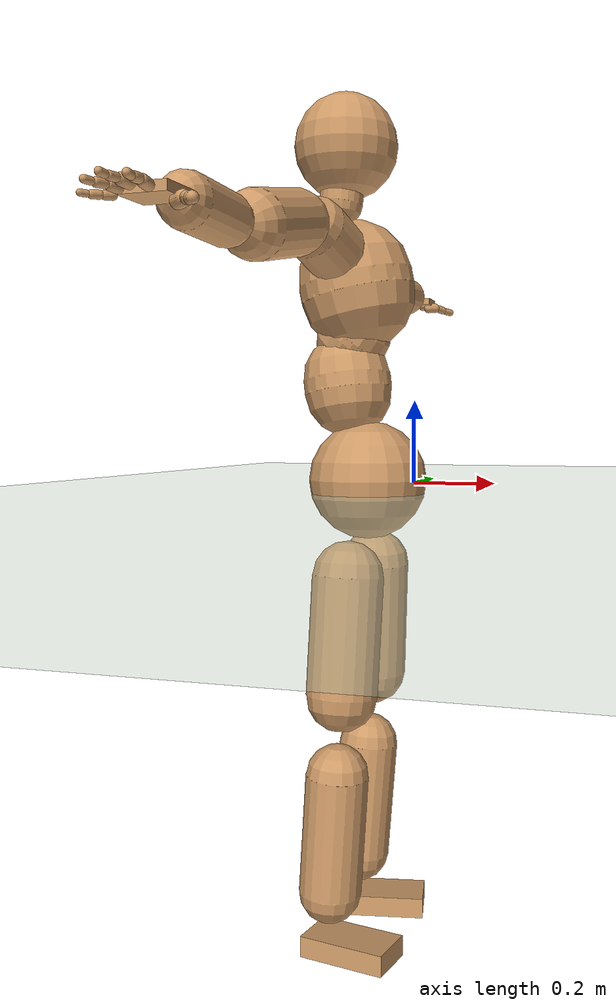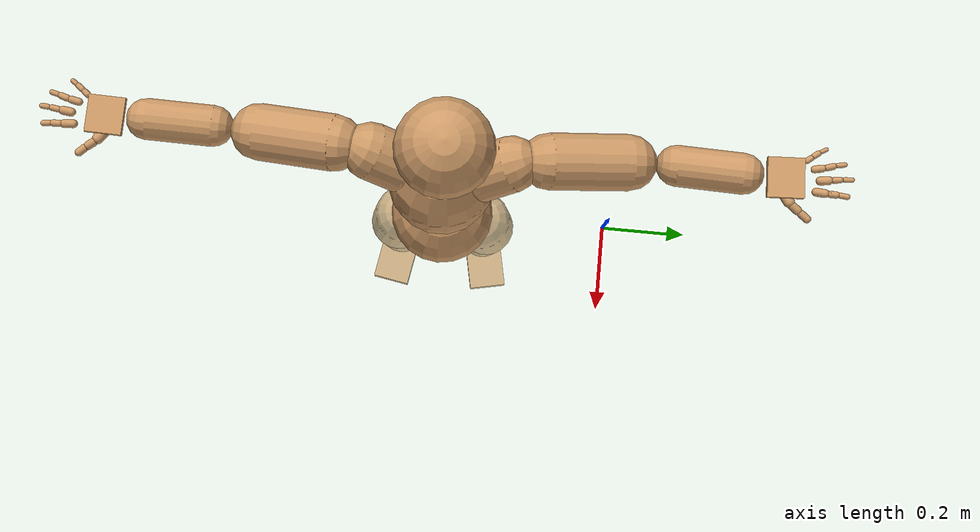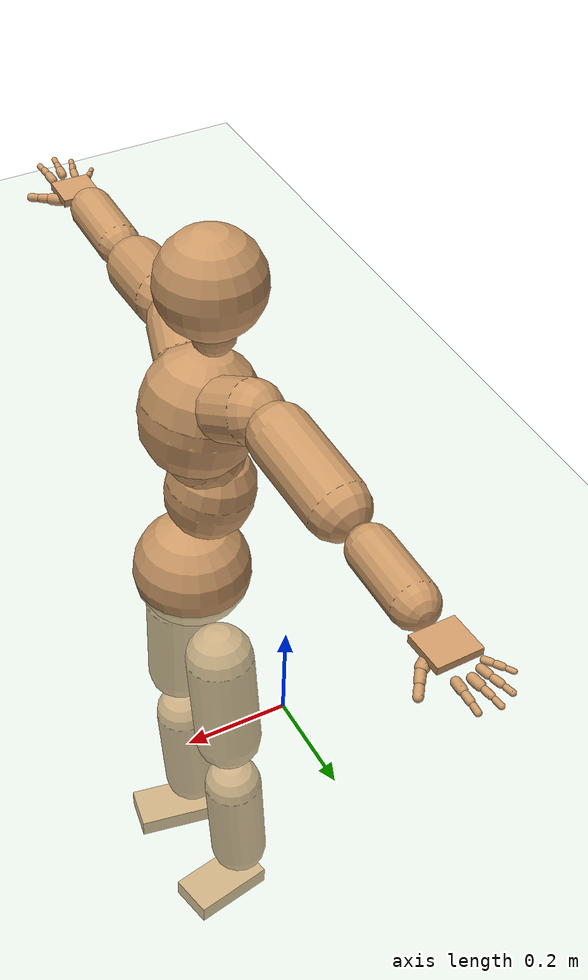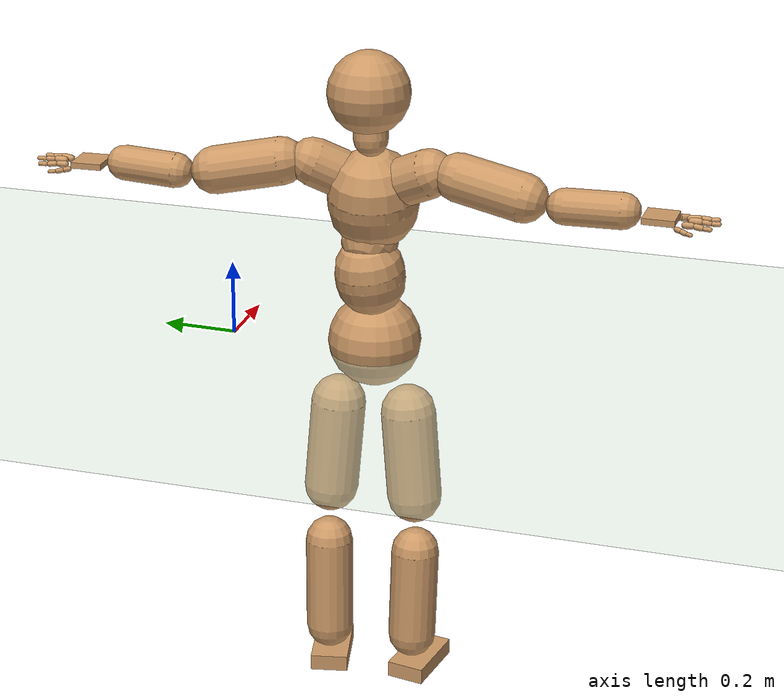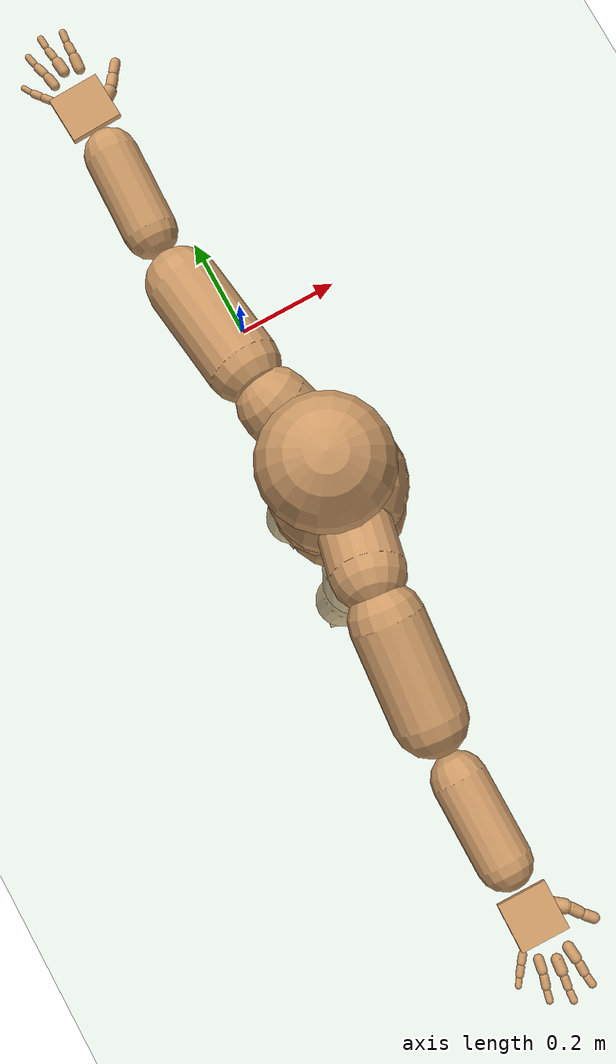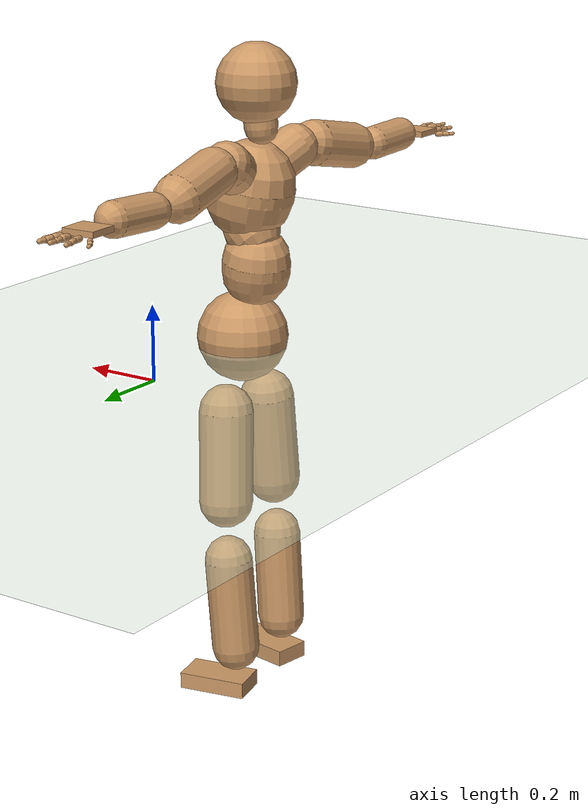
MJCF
<mujoco model="humanoid">
  <compiler coordinate="local" angle="radian"/>
  <default>
    <joint damping="0.0" armature="0.01" stiffness="0.0" limited="true"/>
    <geom conaffinity="1" condim="3" contype="7" margin="0.001" rgba="0.8 0.6 .4 1"/>
  </default>
  <asset>
    <texture type="skybox" builtin="gradient" rgb1=".4 .5 .6" rgb2="0 0 0" width="100" height="100"/>
    <texture builtin="flat" height="1278" mark="cross" markrgb="1 1 1" name="texgeom" random="0.01" rgb1="0.8 0.6 0.4" rgb2="0.8 0.6 0.4" type="cube" width="127"/>
    <texture builtin="checker" height="100" name="texplane" rgb1="0 0 0" rgb2="0.8 0.8 0.8" type="2d" width="100"/>
    <material name="MatPlane" reflectance="0.5" shininess="1" specular="1" texrepeat="60 60" texture="texplane"/>
    <material name="geom" texture="texgeom" texuniform="true"/>
  </asset>
  <worldbody>
    <light cutoff="100" diffuse="1 1 1" dir="-0 0 -1.3" directional="true" exponent="1" pos="0 0 1.3" specular=".1 .1 .1"/>
    <geom conaffinity="1" condim="3" name="floor" pos="0 0 0" rgba="0.8 0.9 0.8 1" size="100 100 .2" type="plane" material="MatPlane"/>
    <body name="Pelvis" pos="0.0012 -0.3966 0.0263">
      <freejoint name="Pelvis"/>
      <geom type="sphere" contype="1" conaffinity="1" density="500" size="0.1240" pos="0.0000 0.0000 0.0000" name="Pelvis"/>
      <body name="L_Hip" pos="-0.0093 0.0914 -0.1052">
        <joint name="L_Hip_x" type="hinge" pos="0 0 0" axis="1 0 0" stiffness="800" damping="80" armature="0.02" range="-180.0000 180.0000"/>
        <joint name="L_Hip_y" type="hinge" pos="0 0 0" axis="0 1 0" stiffness="800" damping="80" armature="0.02" range="-180.0000 180.0000"/>
        <joint name="L_Hip_z" type="hinge" pos="0 0 0" axis="0 0 1" stiffness="800" damping="80" armature="0.02" range="-180.0000 180.0000"/>
        <geom type="capsule" contype="1" conaffinity="1" density="500" fromto="-0.0037 0.0061 -0.0825 -0.0147 0.0243 -0.3301" size="0.0737" name="L_Hip"/>
        <body name="L_Knee" pos="-0.0184 0.0304 -0.4127">
          <joint name="L_Knee_x" type="hinge" pos="0 0 0" axis="1 0 0" stiffness="800" damping="80" armature="0.02" range="-180.0000 180.0000"/>
          <joint name="L_Knee_y" type="hinge" pos="0 0 0" axis="0 1 0" stiffness="800" damping="80" armature="0.02" range="-180.0000 180.0000"/>
          <joint name="L_Knee_z" type="hinge" pos="0 0 0" axis="0 0 1" stiffness="800" damping="80" armature="0.02" range="-180.0000 180.0000"/>
          <geom type="capsule" contype="1" conaffinity="1" density="500" fromto="-0.0061 -0.0019 -0.0856 -0.0246 -0.0078 -0.3424" size="0.065" name="L_Knee"/>
          <body name="L_Ankle" pos="-0.0307 -0.0097 -0.428">
            <joint name="L_Ankle_x" type="hinge" pos="0 0 0" axis="1 0 0" stiffness="800" damping="80" armature="0.02" range="-180.0000 180.0000"/>
            <joint name="L_Ankle_y" type="hinge" pos="0 0 0" axis="0 1 0" stiffness="800" damping="80" armature="0.02" range="-180.0000 180.0000"/>
            <joint name="L_Ankle_z" type="hinge" pos="0 0 0" axis="0 0 1" stiffness="800" damping="80" armature="0.02" range="-180.0000 180.0000"/>
            <geom type="box" contype="1" conaffinity="1" density="500" pos="0.0580 0.0119 -0.0235" size="0.0935 0.0512 0.0221" quat="0.9949 0.0000 0.0000 0.1009" name="L_Ankle"/>
            <body name="L_Toe" pos="0.116 0.0238 -0.047">
              <joint name="L_Toe_x" type="hinge" pos="0 0 0" axis="1 0 0" stiffness="500" damping="50" armature="0.02" range="-180.0000 180.0000"/>
              <joint name="L_Toe_y" type="hinge" pos="0 0 0" axis="0 1 0" stiffness="500" damping="50" armature="0.02" range="-180.0000 180.0000"/>
              <joint name="L_Toe_z" type="hinge" pos="0 0 0" axis="0 0 1" stiffness="500" damping="50" armature="0.02" range="-180.0000 180.0000"/>
              <geom type="box" contype="1" conaffinity="1" density="500" pos="0.0000 0.0000 0.0232" size="0.001 0.0025 0.0011" quat="0.9942 0.0000 0.0000 0.1073" name="L_Toe"/>
            </body>
          </body>
        </body>
      </body>
      <body name="R_Hip" pos="-0.0102 -0.0913 -0.1114">
        <joint name="R_Hip_x" type="hinge" pos="0 0 0" axis="1 0 0" stiffness="800" damping="80" armature="0.02" range="-180.0000 180.0000"/>
        <joint name="R_Hip_y" type="hinge" pos="0 0 0" axis="0 1 0" stiffness="800" damping="80" armature="0.02" range="-180.0000 180.0000"/>
        <joint name="R_Hip_z" type="hinge" pos="0 0 0" axis="0 0 1" stiffness="800" damping="80" armature="0.02" range="-180.0000 180.0000"/>
        <geom type="capsule" contype="1" conaffinity="1" density="500" fromto="-0.0023 -0.0070 -0.0818 -0.0091 -0.0282 -0.3272" size="0.0736" name="R_Hip"/>
        <body name="R_Knee" pos="-0.0113 -0.0352 -0.409">
          <joint name="R_Knee_x" type="hinge" pos="0 0 0" axis="1 0 0" stiffness="800" damping="80" armature="0.02" range="-180.0000 180.0000"/>
          <joint name="R_Knee_y" type="hinge" pos="0 0 0" axis="0 1 0" stiffness="800" damping="80" armature="0.02" range="-180.0000 180.0000"/>
          <joint name="R_Knee_z" type="hinge" pos="0 0 0" axis="0 0 1" stiffness="800" damping="80" armature="0.02" range="-180.0000 180.0000"/>
          <geom type="capsule" contype="1" conaffinity="1" density="500" fromto="-0.0056 0.0009 -0.0838 -0.0223 0.0035 -0.3350" size="0.065" name="R_Knee"/>
          <body name="R_Ankle" pos="-0.0279 0.0043 -0.4188">
            <joint name="R_Ankle_x" type="hinge" pos="0 0 0" axis="1 0 0" stiffness="800" damping="80" armature="0.02" range="-180.0000 180.0000"/>
            <joint name="R_Ankle_y" type="hinge" pos="0 0 0" axis="0 1 0" stiffness="800" damping="80" armature="0.02" range="-180.0000 180.0000"/>
            <joint name="R_Ankle_z" type="hinge" pos="0 0 0" axis="0 0 1" stiffness="800" damping="80" armature="0.02" range="-180.0000 180.0000"/>
            <geom type="box" contype="1" conaffinity="1" density="500" pos="0.0549 -0.0095 -0.0251" size="0.0935 0.0512 0.0221" quat="0.9963 0.0000 0.0000 -0.0858" name="R_Ankle"/>
            <body name="R_Toe" pos="0.1097 -0.0191 -0.0501">
              <joint name="R_Toe_x" type="hinge" pos="0 0 0" axis="1 0 0" stiffness="500" damping="50" armature="0.02" range="-180.0000 180.0000"/>
              <joint name="R_Toe_y" type="hinge" pos="0 0 0" axis="0 1 0" stiffness="500" damping="50" armature="0.02" range="-180.0000 180.0000"/>
              <joint name="R_Toe_z" type="hinge" pos="0 0 0" axis="0 0 1" stiffness="500" damping="50" armature="0.02" range="-180.0000 180.0000"/>
              <geom type="box" contype="1" conaffinity="1" density="500" pos="0.0000 0.0000 0.0248" size="0.001 0.0025 0.0011" quat="0.9971 0.0000 0.0000 -0.0756" name="R_Toe"/>
            </body>
          </body>
        </body>
      </body>
      <body name="Torso" pos="-0.0338 -0.0072 0.1265">
        <joint name="Torso_x" type="hinge" pos="0 0 0" axis="1 0 0" stiffness="1000" damping="100" armature="0.02" range="-180.0000 180.0000"/>
        <joint name="Torso_y" type="hinge" pos="0 0 0" axis="0 1 0" stiffness="1000" damping="100" armature="0.02" range="-180.0000 180.0000"/>
        <joint name="Torso_z" type="hinge" pos="0 0 0" axis="0 0 1" stiffness="1000" damping="100" armature="0.02" range="-180.0000 180.0000"/>
        <geom type="capsule" contype="1" conaffinity="1" density="500" fromto="-0.0125 0.0079 0.0871 -0.0083 0.0053 0.0580" size="0.0924" name="Torso"/>
        <body name="Spine" pos="-0.0208 0.0131 0.1451">
          <joint name="Spine_x" type="hinge" pos="0 0 0" axis="1 0 0" stiffness="1000" damping="100" armature="0.02" range="-180.0000 180.0000"/>
          <joint name="Spine_y" type="hinge" pos="0 0 0" axis="0 1 0" stiffness="1000" damping="100" armature="0.02" range="-180.0000 180.0000"/>
          <joint name="Spine_z" type="hinge" pos="0 0 0" axis="0 0 1" stiffness="1000" damping="100" armature="0.02" range="-180.0000 180.0000"/>
          <geom type="capsule" contype="1" conaffinity="1" density="500" fromto="0.0277 -0.0041 0.0311 0.0185 -0.0028 0.0208" size="0.0749" name="Spine"/>
          <body name="Chest" pos="0.0462 -0.0069 0.0519">
            <joint name="Chest_x" type="hinge" pos="0 0 0" axis="1 0 0" stiffness="1000" damping="100" armature="0.02" range="-180.0000 180.0000"/>
            <joint name="Chest_y" type="hinge" pos="0 0 0" axis="0 1 0" stiffness="1000" damping="100" armature="0.02" range="-180.0000 180.0000"/>
            <joint name="Chest_z" type="hinge" pos="0 0 0" axis="0 0 1" stiffness="1000" damping="100" armature="0.02" range="-180.0000 180.0000"/>
            <geom type="capsule" contype="1" conaffinity="1" density="500" fromto="-0.0190 -0.0021 0.0951 -0.0127 -0.0014 0.0634" size="0.1193" name="Chest"/>
            <body name="Neck" pos="-0.0512 -0.0072 0.2184">
              <joint name="Neck_x" type="hinge" pos="0 0 0" axis="1 0 0" stiffness="500" damping="50" armature="0.02" range="-180.0000 180.0000"/>
              <joint name="Neck_y" type="hinge" pos="0 0 0" axis="0 1 0" stiffness="500" damping="50" armature="0.02" range="-180.0000 180.0000"/>
              <joint name="Neck_z" type="hinge" pos="0 0 0" axis="0 0 1" stiffness="500" damping="50" armature="0.02" range="-180.0000 180.0000"/>
              <geom type="capsule" contype="1" conaffinity="1" density="500" fromto="0.0023 0.0020 0.0292 0.0093 0.0081 0.1168" size="0.0452" name="Neck"/>
              <body name="Head" pos="0.0116 0.0101 0.146">
                <joint name="Head_x" type="hinge" pos="0 0 0" axis="1 0 0" stiffness="500" damping="50" armature="0.02" range="-180.0000 180.0000"/>
                <joint name="Head_y" type="hinge" pos="0 0 0" axis="0 1 0" stiffness="500" damping="50" armature="0.02" range="-180.0000 180.0000"/>
                <joint name="Head_z" type="hinge" pos="0 0 0" axis="0 0 1" stiffness="500" damping="50" armature="0.02" range="-180.0000 180.0000"/>
                <geom type="sphere" contype="1" conaffinity="1" density="500" size="0.1075" pos="0.0000 0.0000 0.0000" name="Head"/>
              </body>
            </body>
            <body name="L_Thorax" pos="-0.0181 0.0631 0.1308">
              <joint name="L_Thorax_x" type="hinge" pos="0 0 0" axis="1 0 0" stiffness="500" damping="50" armature="0.02" range="-180.0000 180.0000"/>
              <joint name="L_Thorax_y" type="hinge" pos="0 0 0" axis="0 1 0" stiffness="500" damping="50" armature="0.02" range="-180.0000 180.0000"/>
              <joint name="L_Thorax_z" type="hinge" pos="0 0 0" axis="0 0 1" stiffness="500" damping="50" armature="0.02" range="-180.0000 180.0000"/>
              <geom type="capsule" contype="1" conaffinity="1" density="500" fromto="-0.0076 0.0215 0.0106 -0.0305 0.0859 0.0425" size="0.0628" name="L_Thorax"/>
              <body name="L_Shoulder" pos="-0.0381 0.1073 0.0531">
                <joint name="L_Shoulder_x" type="hinge" pos="0 0 0" axis="1 0 0" stiffness="500" damping="50" armature="0.02" range="-180.0000 180.0000"/>
                <joint name="L_Shoulder_y" type="hinge" pos="0 0 0" axis="0 1 0" stiffness="500" damping="50" armature="0.02" range="-180.0000 180.0000"/>
                <joint name="L_Shoulder_z" type="hinge" pos="0 0 0" axis="0 0 1" stiffness="500" damping="50" armature="0.02" range="-180.0000 180.0000"/>
                <geom type="capsule" contype="1" conaffinity="1" density="500" fromto="-0.0063 0.0586 -0.0119 -0.0252 0.2342 -0.0474" size="0.0628" name="L_Shoulder"/>
                <body name="L_Elbow" pos="-0.0315 0.2928 -0.0593">
                  <joint name="L_Elbow_x" type="hinge" pos="0 0 0" axis="1 0 0" stiffness="500" damping="50" armature="0.02" range="-720.0000 720.0000"/>
                  <joint name="L_Elbow_y" type="hinge" pos="0 0 0" axis="0 1 0" stiffness="500" damping="50" armature="0.02" range="-720.0000 720.0000"/>
                  <joint name="L_Elbow_z" type="hinge" pos="0 0 0" axis="0 0 1" stiffness="500" damping="50" armature="0.02" range="-720.0000 720.0000"/>
                  <geom type="capsule" contype="1" conaffinity="1" density="500" fromto="0.0017 0.0484 0.0020 0.0066 0.1938 0.0080" size="0.0462" name="L_Elbow"/>
                  <body name="L_Wrist" pos="0.0083 0.2422 0.01">
                    <joint name="L_Wrist_x" type="hinge" pos="0 0 0" axis="1 0 0" stiffness="300" damping="30" armature="0.02" range="-180.0000 180.0000"/>
                    <joint name="L_Wrist_y" type="hinge" pos="0 0 0" axis="0 1 0" stiffness="300" damping="30" armature="0.02" range="-180.0000 180.0000"/>
                    <joint name="L_Wrist_z" type="hinge" pos="0 0 0" axis="0 0 1" stiffness="300" damping="30" armature="0.02" range="-180.0000 180.0000"/>
                    <geom type="box" contype="1" conaffinity="1" density="500" pos="-0.0022 0.0466 -0.0084" size="0.041 0.0448 0.008" quat="0.7233 0.0000 0.0000 -0.6905" name="L_Wrist"/>
                    <body name="L_Index1" pos="0.0218 0.1097 -0.0146">
                      <joint name="L_Index1_x" type="hinge" pos="0 0 0" axis="1 0 0" stiffness="100" damping="10" armature="0.02" range="-180.0000 180.0000"/>
                      <joint name="L_Index1_y" type="hinge" pos="0 0 0" axis="0 1 0" stiffness="100" damping="10" armature="0.02" range="-180.0000 180.0000"/>
                      <joint name="L_Index1_z" type="hinge" pos="0 0 0" axis="0 0 1" stiffness="100" damping="10" armature="0.02" range="-180.0000 180.0000"/>
                      <geom type="capsule" contype="1" conaffinity="1" density="500" fromto="0.0006 0.0065 0.0006 0.0022 0.0261 0.0026" size="0.0095" name="L_Index1"/>
                      <body name="L_Index2" pos="0.0028 0.0326 0.0032">
                        <joint name="L_Index2_x" type="hinge" pos="0 0 0" axis="1 0 0" stiffness="100" damping="10" armature="0.02" range="-180.0000 180.0000"/>
                        <joint name="L_Index2_y" type="hinge" pos="0 0 0" axis="0 1 0" stiffness="100" damping="10" armature="0.02" range="-180.0000 180.0000"/>
                        <joint name="L_Index2_z" type="hinge" pos="0 0 0" axis="0 0 1" stiffness="100" damping="10" armature="0.02" range="-180.0000 180.0000"/>
                        <geom type="capsule" contype="1" conaffinity="1" density="500" fromto="0.0001 0.0046 -0.0003 0.0003 0.0183 -0.0011" size="0.0078" name="L_Index2"/>
                        <body name="L_Index3" pos="0.0004 0.0229 -0.0014">
                          <joint name="L_Index3_x" type="hinge" pos="0 0 0" axis="1 0 0" stiffness="100" damping="10" armature="0.02" range="-180.0000 180.0000"/>
                          <joint name="L_Index3_y" type="hinge" pos="0 0 0" axis="0 1 0" stiffness="100" damping="10" armature="0.02" range="-180.0000 180.0000"/>
                          <joint name="L_Index3_z" type="hinge" pos="0 0 0" axis="0 0 1" stiffness="100" damping="10" armature="0.02" range="-180.0000 180.0000"/>
                          <geom type="capsule" contype="1" conaffinity="1" density="500" fromto="0.0005 0.0050 0.0001 0.0019 0.0199 0.0005" size="0.0064" name="L_Index3"/>
                        </body>
                      </body>
                    </body>
                    <body name="L_Middle1" pos="-0.0021 0.1169 -0.0115">
                      <joint name="L_Middle1_x" type="hinge" pos="0 0 0" axis="1 0 0" stiffness="100" damping="10" armature="0.02" range="-180.0000 180.0000"/>
                      <joint name="L_Middle1_y" type="hinge" pos="0 0 0" axis="0 1 0" stiffness="100" damping="10" armature="0.02" range="-180.0000 180.0000"/>
                      <joint name="L_Middle1_z" type="hinge" pos="0 0 0" axis="0 0 1" stiffness="100" damping="10" armature="0.02" range="-180.0000 180.0000"/>
                      <geom type="capsule" contype="1" conaffinity="1" density="500" fromto="-0.0007 0.0062 0.0004 -0.0029 0.0247 0.0015" size="0.0097" name="L_Middle1"/>
                      <body name="L_Middle2" pos="-0.0036 0.0309 0.0018">
                        <joint name="L_Middle2_x" type="hinge" pos="0 0 0" axis="1 0 0" stiffness="100" damping="10" armature="0.02" range="-180.0000 180.0000"/>
                        <joint name="L_Middle2_y" type="hinge" pos="0 0 0" axis="0 1 0" stiffness="100" damping="10" armature="0.02" range="-180.0000 180.0000"/>
                        <joint name="L_Middle2_z" type="hinge" pos="0 0 0" axis="0 0 1" stiffness="100" damping="10" armature="0.02" range="-180.0000 180.0000"/>
                        <geom type="capsule" contype="1" conaffinity="1" density="500" fromto="-0.0007 0.0048 -0.0001 -0.0030 0.0190 -0.0005" size="0.007" name="L_Middle2"/>
                        <body name="L_Middle3" pos="-0.0037 0.0238 -0.0007">
                          <joint name="L_Middle3_x" type="hinge" pos="0 0 0" axis="1 0 0" stiffness="100" damping="10" armature="0.02" range="-180.0000 180.0000"/>
                          <joint name="L_Middle3_y" type="hinge" pos="0 0 0" axis="0 1 0" stiffness="100" damping="10" armature="0.02" range="-180.0000 180.0000"/>
                          <joint name="L_Middle3_z" type="hinge" pos="0 0 0" axis="0 0 1" stiffness="100" damping="10" armature="0.02" range="-180.0000 180.0000"/>
                          <geom type="capsule" contype="1" conaffinity="1" density="500" fromto="-0.0003 0.0052 0.0003 -0.0014 0.0206 0.0011" size="0.0059" name="L_Middle3"/>
                        </body>
                      </body>
                    </body>
                    <body name="L_Pinky1" pos="-0.0433 0.0898 -0.02">
                      <joint name="L_Pinky1_x" type="hinge" pos="0 0 0" axis="1 0 0" stiffness="100" damping="10" armature="0.02" range="-180.0000 180.0000"/>
                      <joint name="L_Pinky1_y" type="hinge" pos="0 0 0" axis="0 1 0" stiffness="100" damping="10" armature="0.02" range="-180.0000 180.0000"/>
                      <joint name="L_Pinky1_z" type="hinge" pos="0 0 0" axis="0 0 1" stiffness="100" damping="10" armature="0.02" range="-180.0000 180.0000"/>
                      <geom type="capsule" contype="1" conaffinity="1" density="500" fromto="-0.0025 0.0030 -0.0001 -0.0099 0.0121 -0.0005" size="0.0069" name="L_Pinky1"/>
                      <body name="L_Pinky2" pos="-0.0123 0.0151 -0.0006">
                        <joint name="L_Pinky2_x" type="hinge" pos="0 0 0" axis="1 0 0" stiffness="100" damping="10" armature="0.02" range="-180.0000 180.0000"/>
                        <joint name="L_Pinky2_y" type="hinge" pos="0 0 0" axis="0 1 0" stiffness="100" damping="10" armature="0.02" range="-180.0000 180.0000"/>
                        <joint name="L_Pinky2_z" type="hinge" pos="0 0 0" axis="0 0 1" stiffness="100" damping="10" armature="0.02" range="-180.0000 180.0000"/>
                        <geom type="capsule" contype="1" conaffinity="1" density="500" fromto="-0.0024 0.0031 -0.0002 -0.0094 0.0123 -0.0010" size="0.0067" name="L_Pinky2"/>
                        <body name="L_Pinky3" pos="-0.0118 0.0154 -0.0012">
                          <joint name="L_Pinky3_x" type="hinge" pos="0 0 0" axis="1 0 0" stiffness="100" damping="10" armature="0.02" range="-180.0000 180.0000"/>
                          <joint name="L_Pinky3_y" type="hinge" pos="0 0 0" axis="0 1 0" stiffness="100" damping="10" armature="0.02" range="-180.0000 180.0000"/>
                          <joint name="L_Pinky3_z" type="hinge" pos="0 0 0" axis="0 0 1" stiffness="100" damping="10" armature="0.02" range="-180.0000 180.0000"/>
                          <geom type="capsule" contype="1" conaffinity="1" density="500" fromto="-0.0020 0.0035 0.0002 -0.0078 0.0139 0.0006" size="0.005" name="L_Pinky3"/>
                        </body>
                      </body>
                    </body>
                    <body name="L_Ring1" pos="-0.0266 0.104 -0.0144">
                      <joint name="L_Ring1_x" type="hinge" pos="0 0 0" axis="1 0 0" stiffness="100" damping="10" armature="0.02" range="-180.0000 180.0000"/>
                      <joint name="L_Ring1_y" type="hinge" pos="0 0 0" axis="0 1 0" stiffness="100" damping="10" armature="0.02" range="-180.0000 180.0000"/>
                      <joint name="L_Ring1_z" type="hinge" pos="0 0 0" axis="0 0 1" stiffness="100" damping="10" armature="0.02" range="-180.0000 180.0000"/>
                      <geom type="capsule" contype="1" conaffinity="1" density="500" fromto="-0.0011 0.0057 0.0003 -0.0044 0.0227 0.0014" size="0.0084" name="L_Ring1"/>
                      <body name="L_Ring2" pos="-0.0055 0.0283 0.0017">
                        <joint name="L_Ring2_x" type="hinge" pos="0 0 0" axis="1 0 0" stiffness="100" damping="10" armature="0.02" range="-180.0000 180.0000"/>
                        <joint name="L_Ring2_y" type="hinge" pos="0 0 0" axis="0 1 0" stiffness="100" damping="10" armature="0.02" range="-180.0000 180.0000"/>
                        <joint name="L_Ring2_z" type="hinge" pos="0 0 0" axis="0 0 1" stiffness="100" damping="10" armature="0.02" range="-180.0000 180.0000"/>
                        <geom type="capsule" contype="1" conaffinity="1" density="500" fromto="-0.0015 0.0046 -0.0003 -0.0059 0.0184 -0.0010" size="0.0075" name="L_Ring2"/>
                        <body name="L_Ring3" pos="-0.0074 0.0229 -0.0013">
                          <joint name="L_Ring3_x" type="hinge" pos="0 0 0" axis="1 0 0" stiffness="100" damping="10" armature="0.02" range="-180.0000 180.0000"/>
                          <joint name="L_Ring3_y" type="hinge" pos="0 0 0" axis="0 1 0" stiffness="100" damping="10" armature="0.02" range="-180.0000 180.0000"/>
                          <joint name="L_Ring3_z" type="hinge" pos="0 0 0" axis="0 0 1" stiffness="100" damping="10" armature="0.02" range="-180.0000 180.0000"/>
                          <geom type="capsule" contype="1" conaffinity="1" density="500" fromto="-0.0011 0.0050 0.0001 -0.0043 0.0200 0.0006" size="0.0058" name="L_Ring3"/>
                        </body>
                      </body>
                    </body>
                    <body name="L_Thumb1" pos="0.0286 0.0459 -0.024">
                      <joint name="L_Thumb1_x" type="hinge" pos="0 0 0" axis="1 0 0" stiffness="100" damping="10" armature="0.02" range="-180.0000 180.0000"/>
                      <joint name="L_Thumb1_y" type="hinge" pos="0 0 0" axis="0 1 0" stiffness="100" damping="10" armature="0.02" range="-180.0000 180.0000"/>
                      <joint name="L_Thumb1_z" type="hinge" pos="0 0 0" axis="0 0 1" stiffness="100" damping="10" armature="0.02" range="-180.0000 180.0000"/>
                      <geom type="capsule" contype="1" conaffinity="1" density="500" fromto="0.0050 0.0036 0.0003 0.0199 0.0145 0.0011" size="0.0127" name="L_Thumb1"/>
                      <body name="L_Thumb2" pos="0.0248 0.0181 0.0013">
                        <joint name="L_Thumb2_x" type="hinge" pos="0 0 0" axis="1 0 0" stiffness="100" damping="10" armature="0.02" range="-180.0000 180.0000"/>
                        <joint name="L_Thumb2_y" type="hinge" pos="0 0 0" axis="0 1 0" stiffness="100" damping="10" armature="0.02" range="-180.0000 180.0000"/>
                        <joint name="L_Thumb2_z" type="hinge" pos="0 0 0" axis="0 0 1" stiffness="100" damping="10" armature="0.02" range="-180.0000 180.0000"/>
                        <geom type="capsule" contype="1" conaffinity="1" density="500" fromto="0.0030 0.0042 -0.0012 0.0119 0.0169 -0.0047" size="0.0099" name="L_Thumb2"/>
                        <body name="L_Thumb3" pos="0.0148 0.0212 -0.0059">
                          <joint name="L_Thumb3_x" type="hinge" pos="0 0 0" axis="1 0 0" stiffness="100" damping="10" armature="0.02" range="-180.0000 180.0000"/>
                          <joint name="L_Thumb3_y" type="hinge" pos="0 0 0" axis="0 1 0" stiffness="100" damping="10" armature="0.02" range="-180.0000 180.0000"/>
                          <joint name="L_Thumb3_z" type="hinge" pos="0 0 0" axis="0 0 1" stiffness="100" damping="10" armature="0.02" range="-180.0000 180.0000"/>
                          <geom type="capsule" contype="1" conaffinity="1" density="500" fromto="0.0034 0.0046 -0.0008 0.0135 0.0185 -0.0031" size="0.009" name="L_Thumb3"/>
                        </body>
                      </body>
                    </body>
                  </body>
                </body>
              </body>
            </body>
            <body name="R_Thorax" pos="-0.0258 -0.0663 0.1264">
              <joint name="R_Thorax_x" type="hinge" pos="0 0 0" axis="1 0 0" stiffness="500" damping="50" armature="0.02" range="-180.0000 180.0000"/>
              <joint name="R_Thorax_y" type="hinge" pos="0 0 0" axis="0 1 0" stiffness="500" damping="50" armature="0.02" range="-180.0000 180.0000"/>
              <joint name="R_Thorax_z" type="hinge" pos="0 0 0" axis="0 0 1" stiffness="500" damping="50" armature="0.02" range="-180.0000 180.0000"/>
              <geom type="capsule" contype="1" conaffinity="1" density="500" fromto="-0.0060 -0.0234 0.0111 -0.0239 -0.0936 0.0443" size="0.0639" name="R_Thorax"/>
              <body name="R_Shoulder" pos="-0.0298 -0.117 0.0554">
                <joint name="R_Shoulder_x" type="hinge" pos="0 0 0" axis="1 0 0" stiffness="500" damping="50" armature="0.02" range="-180.0000 180.0000"/>
                <joint name="R_Shoulder_y" type="hinge" pos="0 0 0" axis="0 1 0" stiffness="500" damping="50" armature="0.02" range="-180.0000 180.0000"/>
                <joint name="R_Shoulder_z" type="hinge" pos="0 0 0" axis="0 0 1" stiffness="500" damping="50" armature="0.02" range="-180.0000 180.0000"/>
                <geom type="capsule" contype="1" conaffinity="1" density="500" fromto="-0.0047 -0.0563 -0.0108 -0.0187 -0.2253 -0.0430" size="0.0633" name="R_Shoulder"/>
                <body name="R_Elbow" pos="-0.0234 -0.2816 -0.0538">
                  <joint name="R_Elbow_x" type="hinge" pos="0 0 0" axis="1 0 0" stiffness="500" damping="50" armature="0.02" range="-720.0000 720.0000"/>
                  <joint name="R_Elbow_y" type="hinge" pos="0 0 0" axis="0 1 0" stiffness="500" damping="50" armature="0.02" range="-720.0000 720.0000"/>
                  <joint name="R_Elbow_z" type="hinge" pos="0 0 0" axis="0 0 1" stiffness="500" damping="50" armature="0.02" range="-720.0000 720.0000"/>
                  <geom type="capsule" contype="1" conaffinity="1" density="500" fromto="-0.0005 -0.0485 0.0011 -0.0019 -0.1939 0.0046" size="0.0464" name="R_Elbow"/>
                  <body name="R_Wrist" pos="-0.0024 -0.2424 0.0057">
                    <joint name="R_Wrist_x" type="hinge" pos="0 0 0" axis="1 0 0" stiffness="300" damping="30" armature="0.02" range="-180.0000 180.0000"/>
                    <joint name="R_Wrist_y" type="hinge" pos="0 0 0" axis="0 1 0" stiffness="300" damping="30" armature="0.02" range="-180.0000 180.0000"/>
                    <joint name="R_Wrist_z" type="hinge" pos="0 0 0" axis="0 0 1" stiffness="300" damping="30" armature="0.02" range="-180.0000 180.0000"/>
                    <geom type="box" contype="1" conaffinity="1" density="500" pos="-0.0011 -0.0459 -0.0080" size="0.041 0.0419 0.0082" quat="0.7159 0.0000 0.0000 0.6982" name="R_Wrist"/>
                    <body name="R_Index1" pos="0.0238 -0.1084 -0.0137">
                      <joint name="R_Index1_x" type="hinge" pos="0 0 0" axis="1 0 0" stiffness="100" damping="10" armature="0.02" range="-180.0000 180.0000"/>
                      <joint name="R_Index1_y" type="hinge" pos="0 0 0" axis="0 1 0" stiffness="100" damping="10" armature="0.02" range="-180.0000 180.0000"/>
                      <joint name="R_Index1_z" type="hinge" pos="0 0 0" axis="0 0 1" stiffness="100" damping="10" armature="0.02" range="-180.0000 180.0000"/>
                      <geom type="capsule" contype="1" conaffinity="1" density="500" fromto="0.0006 -0.0065 0.0006 0.0022 -0.0261 0.0025" size="0.0095" name="R_Index1"/>
                      <body name="R_Index2" pos="0.0028 -0.0326 0.0032">
                        <joint name="R_Index2_x" type="hinge" pos="0 0 0" axis="1 0 0" stiffness="100" damping="10" armature="0.02" range="-180.0000 180.0000"/>
                        <joint name="R_Index2_y" type="hinge" pos="0 0 0" axis="0 1 0" stiffness="100" damping="10" armature="0.02" range="-180.0000 180.0000"/>
                        <joint name="R_Index2_z" type="hinge" pos="0 0 0" axis="0 0 1" stiffness="100" damping="10" armature="0.02" range="-180.0000 180.0000"/>
                        <geom type="capsule" contype="1" conaffinity="1" density="500" fromto="0.0001 -0.0046 -0.0003 0.0003 -0.0183 -0.0011" size="0.0078" name="R_Index2"/>
                        <body name="R_Index3" pos="0.0004 -0.0229 -0.0014">
                          <joint name="R_Index3_x" type="hinge" pos="0 0 0" axis="1 0 0" stiffness="100" damping="10" armature="0.02" range="-180.0000 180.0000"/>
                          <joint name="R_Index3_y" type="hinge" pos="0 0 0" axis="0 1 0" stiffness="100" damping="10" armature="0.02" range="-180.0000 180.0000"/>
                          <joint name="R_Index3_z" type="hinge" pos="0 0 0" axis="0 0 1" stiffness="100" damping="10" armature="0.02" range="-180.0000 180.0000"/>
                          <geom type="capsule" contype="1" conaffinity="1" density="500" fromto="0.0005 -0.0042 0.0001 0.0019 -0.0167 0.0005" size="0.0067" name="R_Index3"/>
                        </body>
                      </body>
                    </body>
                    <body name="R_Middle1" pos="-0.0001 -0.1155 -0.0106">
                      <joint name="R_Middle1_x" type="hinge" pos="0 0 0" axis="1 0 0" stiffness="100" damping="10" armature="0.02" range="-180.0000 180.0000"/>
                      <joint name="R_Middle1_y" type="hinge" pos="0 0 0" axis="0 1 0" stiffness="100" damping="10" armature="0.02" range="-180.0000 180.0000"/>
                      <joint name="R_Middle1_z" type="hinge" pos="0 0 0" axis="0 0 1" stiffness="100" damping="10" armature="0.02" range="-180.0000 180.0000"/>
                      <geom type="capsule" contype="1" conaffinity="1" density="500" fromto="-0.0007 -0.0062 0.0004 -0.0029 -0.0247 0.0015" size="0.0097" name="R_Middle1"/>
                      <body name="R_Middle2" pos="-0.0036 -0.0309 0.0018">
                        <joint name="R_Middle2_x" type="hinge" pos="0 0 0" axis="1 0 0" stiffness="100" damping="10" armature="0.02" range="-180.0000 180.0000"/>
                        <joint name="R_Middle2_y" type="hinge" pos="0 0 0" axis="0 1 0" stiffness="100" damping="10" armature="0.02" range="-180.0000 180.0000"/>
                        <joint name="R_Middle2_z" type="hinge" pos="0 0 0" axis="0 0 1" stiffness="100" damping="10" armature="0.02" range="-180.0000 180.0000"/>
                        <geom type="capsule" contype="1" conaffinity="1" density="500" fromto="-0.0007 -0.0048 -0.0001 -0.0030 -0.0190 -0.0005" size="0.007" name="R_Middle2"/>
                        <body name="R_Middle3" pos="-0.0037 -0.0238 -0.0007">
                          <joint name="R_Middle3_x" type="hinge" pos="0 0 0" axis="1 0 0" stiffness="100" damping="10" armature="0.02" range="-180.0000 180.0000"/>
                          <joint name="R_Middle3_y" type="hinge" pos="0 0 0" axis="0 1 0" stiffness="100" damping="10" armature="0.02" range="-180.0000 180.0000"/>
                          <joint name="R_Middle3_z" type="hinge" pos="0 0 0" axis="0 0 1" stiffness="100" damping="10" armature="0.02" range="-180.0000 180.0000"/>
                          <geom type="capsule" contype="1" conaffinity="1" density="500" fromto="-0.0003 -0.0044 0.0003 -0.0014 -0.0174 0.0011" size="0.0062" name="R_Middle3"/>
                        </body>
                      </body>
                    </body>
                    <body name="R_Pinky1" pos="-0.0413 -0.0884 -0.0191">
                      <joint name="R_Pinky1_x" type="hinge" pos="0 0 0" axis="1 0 0" stiffness="100" damping="10" armature="0.02" range="-180.0000 180.0000"/>
                      <joint name="R_Pinky1_y" type="hinge" pos="0 0 0" axis="0 1 0" stiffness="100" damping="10" armature="0.02" range="-180.0000 180.0000"/>
                      <joint name="R_Pinky1_z" type="hinge" pos="0 0 0" axis="0 0 1" stiffness="100" damping="10" armature="0.02" range="-180.0000 180.0000"/>
                      <geom type="capsule" contype="1" conaffinity="1" density="500" fromto="-0.0025 -0.0030 -0.0001 -0.0099 -0.0121 -0.0005" size="0.0069" name="R_Pinky1"/>
                      <body name="R_Pinky2" pos="-0.0123 -0.0151 -0.0006">
                        <joint name="R_Pinky2_x" type="hinge" pos="0 0 0" axis="1 0 0" stiffness="100" damping="10" armature="0.02" range="-180.0000 180.0000"/>
                        <joint name="R_Pinky2_y" type="hinge" pos="0 0 0" axis="0 1 0" stiffness="100" damping="10" armature="0.02" range="-180.0000 180.0000"/>
                        <joint name="R_Pinky2_z" type="hinge" pos="0 0 0" axis="0 0 1" stiffness="100" damping="10" armature="0.02" range="-180.0000 180.0000"/>
                        <geom type="capsule" contype="1" conaffinity="1" density="500" fromto="-0.0024 -0.0031 -0.0002 -0.0094 -0.0123 -0.0010" size="0.0067" name="R_Pinky2"/>
                        <body name="R_Pinky3" pos="-0.0118 -0.0154 -0.0012">
                          <joint name="R_Pinky3_x" type="hinge" pos="0 0 0" axis="1 0 0" stiffness="100" damping="10" armature="0.02" range="-180.0000 180.0000"/>
                          <joint name="R_Pinky3_y" type="hinge" pos="0 0 0" axis="0 1 0" stiffness="100" damping="10" armature="0.02" range="-180.0000 180.0000"/>
                          <joint name="R_Pinky3_z" type="hinge" pos="0 0 0" axis="0 0 1" stiffness="100" damping="10" armature="0.02" range="-180.0000 180.0000"/>
                          <geom type="capsule" contype="1" conaffinity="1" density="500" fromto="-0.0020 -0.0027 0.0002 -0.0078 -0.0107 0.0006" size="0.0053" name="R_Pinky3"/>
                        </body>
                      </body>
                    </body>
                    <body name="R_Ring1" pos="-0.0246 -0.1026 -0.0135">
                      <joint name="R_Ring1_x" type="hinge" pos="0 0 0" axis="1 0 0" stiffness="100" damping="10" armature="0.02" range="-180.0000 180.0000"/>
                      <joint name="R_Ring1_y" type="hinge" pos="0 0 0" axis="0 1 0" stiffness="100" damping="10" armature="0.02" range="-180.0000 180.0000"/>
                      <joint name="R_Ring1_z" type="hinge" pos="0 0 0" axis="0 0 1" stiffness="100" damping="10" armature="0.02" range="-180.0000 180.0000"/>
                      <geom type="capsule" contype="1" conaffinity="1" density="500" fromto="-0.0011 -0.0057 0.0003 -0.0044 -0.0227 0.0014" size="0.0084" name="R_Ring1"/>
                      <body name="R_Ring2" pos="-0.0055 -0.0283 0.0017">
                        <joint name="R_Ring2_x" type="hinge" pos="0 0 0" axis="1 0 0" stiffness="100" damping="10" armature="0.02" range="-180.0000 180.0000"/>
                        <joint name="R_Ring2_y" type="hinge" pos="0 0 0" axis="0 1 0" stiffness="100" damping="10" armature="0.02" range="-180.0000 180.0000"/>
                        <joint name="R_Ring2_z" type="hinge" pos="0 0 0" axis="0 0 1" stiffness="100" damping="10" armature="0.02" range="-180.0000 180.0000"/>
                        <geom type="capsule" contype="1" conaffinity="1" density="500" fromto="-0.0015 -0.0046 -0.0003 -0.0059 -0.0184 -0.0010" size="0.0075" name="R_Ring2"/>
                        <body name="R_Ring3" pos="-0.0074 -0.0229 -0.0013">
                          <joint name="R_Ring3_x" type="hinge" pos="0 0 0" axis="1 0 0" stiffness="100" damping="10" armature="0.02" range="-180.0000 180.0000"/>
                          <joint name="R_Ring3_y" type="hinge" pos="0 0 0" axis="0 1 0" stiffness="100" damping="10" armature="0.02" range="-180.0000 180.0000"/>
                          <joint name="R_Ring3_z" type="hinge" pos="0 0 0" axis="0 0 1" stiffness="100" damping="10" armature="0.02" range="-180.0000 180.0000"/>
                          <geom type="capsule" contype="1" conaffinity="1" density="500" fromto="-0.0011 -0.0042 0.0001 -0.0043 -0.0168 0.0006" size="0.006" name="R_Ring3"/>
                        </body>
                      </body>
                    </body>
                    <body name="R_Thumb1" pos="0.0307 -0.0445 -0.023">
                      <joint name="R_Thumb1_x" type="hinge" pos="0 0 0" axis="1 0 0" stiffness="100" damping="10" armature="0.02" range="-180.0000 180.0000"/>
                      <joint name="R_Thumb1_y" type="hinge" pos="0 0 0" axis="0 1 0" stiffness="100" damping="10" armature="0.02" range="-180.0000 180.0000"/>
                      <joint name="R_Thumb1_z" type="hinge" pos="0 0 0" axis="0 0 1" stiffness="100" damping="10" armature="0.02" range="-180.0000 180.0000"/>
                      <geom type="capsule" contype="1" conaffinity="1" density="500" fromto="0.0050 -0.0036 0.0003 0.0199 -0.0145 0.0011" size="0.0127" name="R_Thumb1"/>
                      <body name="R_Thumb2" pos="0.0248 -0.0181 0.0013">
                        <joint name="R_Thumb2_x" type="hinge" pos="0 0 0" axis="1 0 0" stiffness="100" damping="10" armature="0.02" range="-180.0000 180.0000"/>
                        <joint name="R_Thumb2_y" type="hinge" pos="0 0 0" axis="0 1 0" stiffness="100" damping="10" armature="0.02" range="-180.0000 180.0000"/>
                        <joint name="R_Thumb2_z" type="hinge" pos="0 0 0" axis="0 0 1" stiffness="100" damping="10" armature="0.02" range="-180.0000 180.0000"/>
                        <geom type="capsule" contype="1" conaffinity="1" density="500" fromto="0.0030 -0.0042 -0.0012 0.0119 -0.0169 -0.0047" size="0.0099" name="R_Thumb2"/>
                        <body name="R_Thumb3" pos="0.0148 -0.0212 -0.0059">
                          <joint name="R_Thumb3_x" type="hinge" pos="0 0 0" axis="1 0 0" stiffness="100" damping="10" armature="0.02" range="-180.0000 180.0000"/>
                          <joint name="R_Thumb3_y" type="hinge" pos="0 0 0" axis="0 1 0" stiffness="100" damping="10" armature="0.02" range="-180.0000 180.0000"/>
                          <joint name="R_Thumb3_z" type="hinge" pos="0 0 0" axis="0 0 1" stiffness="100" damping="10" armature="0.02" range="-180.0000 180.0000"/>
                          <geom type="capsule" contype="1" conaffinity="1" density="500" fromto="0.0034 -0.0038 -0.0008 0.0135 -0.0153 -0.0031" size="0.0093" name="R_Thumb3"/>
                        </body>
                      </body>
                    </body>
                  </body>
                </body>
              </body>
            </body>
          </body>
        </body>
      </body>
    </body>
  </worldbody>
  <actuator>
    <motor name="L_Hip_x" joint="L_Hip_x" gear="500"/>
    <motor name="L_Hip_y" joint="L_Hip_y" gear="500"/>
    <motor name="L_Hip_z" joint="L_Hip_z" gear="500"/>
    <motor name="L_Knee_x" joint="L_Knee_x" gear="500"/>
    <motor name="L_Knee_y" joint="L_Knee_y" gear="500"/>
    <motor name="L_Knee_z" joint="L_Knee_z" gear="500"/>
    <motor name="L_Ankle_x" joint="L_Ankle_x" gear="500"/>
    <motor name="L_Ankle_y" joint="L_Ankle_y" gear="500"/>
    <motor name="L_Ankle_z" joint="L_Ankle_z" gear="500"/>
    <motor name="L_Toe_x" joint="L_Toe_x" gear="500"/>
    <motor name="L_Toe_y" joint="L_Toe_y" gear="500"/>
    <motor name="L_Toe_z" joint="L_Toe_z" gear="500"/>
    <motor name="R_Hip_x" joint="R_Hip_x" gear="500"/>
    <motor name="R_Hip_y" joint="R_Hip_y" gear="500"/>
    <motor name="R_Hip_z" joint="R_Hip_z" gear="500"/>
    <motor name="R_Knee_x" joint="R_Knee_x" gear="500"/>
    <motor name="R_Knee_y" joint="R_Knee_y" gear="500"/>
    <motor name="R_Knee_z" joint="R_Knee_z" gear="500"/>
    <motor name="R_Ankle_x" joint="R_Ankle_x" gear="500"/>
    <motor name="R_Ankle_y" joint="R_Ankle_y" gear="500"/>
    <motor name="R_Ankle_z" joint="R_Ankle_z" gear="500"/>
    <motor name="R_Toe_x" joint="R_Toe_x" gear="500"/>
    <motor name="R_Toe_y" joint="R_Toe_y" gear="500"/>
    <motor name="R_Toe_z" joint="R_Toe_z" gear="500"/>
    <motor name="Torso_x" joint="Torso_x" gear="500"/>
    <motor name="Torso_y" joint="Torso_y" gear="500"/>
    <motor name="Torso_z" joint="Torso_z" gear="500"/>
    <motor name="Spine_x" joint="Spine_x" gear="500"/>
    <motor name="Spine_y" joint="Spine_y" gear="500"/>
    <motor name="Spine_z" joint="Spine_z" gear="500"/>
    <motor name="Chest_x" joint="Chest_x" gear="500"/>
    <motor name="Chest_y" joint="Chest_y" gear="500"/>
    <motor name="Chest_z" joint="Chest_z" gear="500"/>
    <motor name="Neck_x" joint="Neck_x" gear="500"/>
    <motor name="Neck_y" joint="Neck_y" gear="500"/>
    <motor name="Neck_z" joint="Neck_z" gear="500"/>
    <motor name="Head_x" joint="Head_x" gear="500"/>
    <motor name="Head_y" joint="Head_y" gear="500"/>
    <motor name="Head_z" joint="Head_z" gear="500"/>
    <motor name="L_Thorax_x" joint="L_Thorax_x" gear="500"/>
    <motor name="L_Thorax_y" joint="L_Thorax_y" gear="500"/>
    <motor name="L_Thorax_z" joint="L_Thorax_z" gear="500"/>
    <motor name="L_Shoulder_x" joint="L_Shoulder_x" gear="500"/>
    <motor name="L_Shoulder_y" joint="L_Shoulder_y" gear="500"/>
    <motor name="L_Shoulder_z" joint="L_Shoulder_z" gear="500"/>
    <motor name="L_Elbow_x" joint="L_Elbow_x" gear="500"/>
    <motor name="L_Elbow_y" joint="L_Elbow_y" gear="500"/>
    <motor name="L_Elbow_z" joint="L_Elbow_z" gear="500"/>
    <motor name="L_Wrist_x" joint="L_Wrist_x" gear="500"/>
    <motor name="L_Wrist_y" joint="L_Wrist_y" gear="500"/>
    <motor name="L_Wrist_z" joint="L_Wrist_z" gear="500"/>
    <motor name="L_Index1_x" joint="L_Index1_x" gear="500"/>
    <motor name="L_Index1_y" joint="L_Index1_y" gear="500"/>
    <motor name="L_Index1_z" joint="L_Index1_z" gear="500"/>
    <motor name="L_Index2_x" joint="L_Index2_x" gear="500"/>
    <motor name="L_Index2_y" joint="L_Index2_y" gear="500"/>
    <motor name="L_Index2_z" joint="L_Index2_z" gear="500"/>
    <motor name="L_Index3_x" joint="L_Index3_x" gear="500"/>
    <motor name="L_Index3_y" joint="L_Index3_y" gear="500"/>
    <motor name="L_Index3_z" joint="L_Index3_z" gear="500"/>
    <motor name="L_Middle1_x" joint="L_Middle1_x" gear="500"/>
    <motor name="L_Middle1_y" joint="L_Middle1_y" gear="500"/>
    <motor name="L_Middle1_z" joint="L_Middle1_z" gear="500"/>
    <motor name="L_Middle2_x" joint="L_Middle2_x" gear="500"/>
    <motor name="L_Middle2_y" joint="L_Middle2_y" gear="500"/>
    <motor name="L_Middle2_z" joint="L_Middle2_z" gear="500"/>
    <motor name="L_Middle3_x" joint="L_Middle3_x" gear="500"/>
    <motor name="L_Middle3_y" joint="L_Middle3_y" gear="500"/>
    <motor name="L_Middle3_z" joint="L_Middle3_z" gear="500"/>
    <motor name="L_Pinky1_x" joint="L_Pinky1_x" gear="500"/>
    <motor name="L_Pinky1_y" joint="L_Pinky1_y" gear="500"/>
    <motor name="L_Pinky1_z" joint="L_Pinky1_z" gear="500"/>
    <motor name="L_Pinky2_x" joint="L_Pinky2_x" gear="500"/>
    <motor name="L_Pinky2_y" joint="L_Pinky2_y" gear="500"/>
    <motor name="L_Pinky2_z" joint="L_Pinky2_z" gear="500"/>
    <motor name="L_Pinky3_x" joint="L_Pinky3_x" gear="500"/>
    <motor name="L_Pinky3_y" joint="L_Pinky3_y" gear="500"/>
    <motor name="L_Pinky3_z" joint="L_Pinky3_z" gear="500"/>
    <motor name="L_Ring1_x" joint="L_Ring1_x" gear="500"/>
    <motor name="L_Ring1_y" joint="L_Ring1_y" gear="500"/>
    <motor name="L_Ring1_z" joint="L_Ring1_z" gear="500"/>
    <motor name="L_Ring2_x" joint="L_Ring2_x" gear="500"/>
    <motor name="L_Ring2_y" joint="L_Ring2_y" gear="500"/>
    <motor name="L_Ring2_z" joint="L_Ring2_z" gear="500"/>
    <motor name="L_Ring3_x" joint="L_Ring3_x" gear="500"/>
    <motor name="L_Ring3_y" joint="L_Ring3_y" gear="500"/>
    <motor name="L_Ring3_z" joint="L_Ring3_z" gear="500"/>
    <motor name="L_Thumb1_x" joint="L_Thumb1_x" gear="500"/>
    <motor name="L_Thumb1_y" joint="L_Thumb1_y" gear="500"/>
    <motor name="L_Thumb1_z" joint="L_Thumb1_z" gear="500"/>
    <motor name="L_Thumb2_x" joint="L_Thumb2_x" gear="500"/>
    <motor name="L_Thumb2_y" joint="L_Thumb2_y" gear="500"/>
    <motor name="L_Thumb2_z" joint="L_Thumb2_z" gear="500"/>
    <motor name="L_Thumb3_x" joint="L_Thumb3_x" gear="500"/>
    <motor name="L_Thumb3_y" joint="L_Thumb3_y" gear="500"/>
    <motor name="L_Thumb3_z" joint="L_Thumb3_z" gear="500"/>
    <motor name="R_Thorax_x" joint="R_Thorax_x" gear="500"/>
    <motor name="R_Thorax_y" joint="R_Thorax_y" gear="500"/>
    <motor name="R_Thorax_z" joint="R_Thorax_z" gear="500"/>
    <motor name="R_Shoulder_x" joint="R_Shoulder_x" gear="500"/>
    <motor name="R_Shoulder_y" joint="R_Shoulder_y" gear="500"/>
    <motor name="R_Shoulder_z" joint="R_Shoulder_z" gear="500"/>
    <motor name="R_Elbow_x" joint="R_Elbow_x" gear="500"/>
    <motor name="R_Elbow_y" joint="R_Elbow_y" gear="500"/>
    <motor name="R_Elbow_z" joint="R_Elbow_z" gear="500"/>
    <motor name="R_Wrist_x" joint="R_Wrist_x" gear="500"/>
    <motor name="R_Wrist_y" joint="R_Wrist_y" gear="500"/>
    <motor name="R_Wrist_z" joint="R_Wrist_z" gear="500"/>
    <motor name="R_Index1_x" joint="R_Index1_x" gear="500"/>
    <motor name="R_Index1_y" joint="R_Index1_y" gear="500"/>
    <motor name="R_Index1_z" joint="R_Index1_z" gear="500"/>
    <motor name="R_Index2_x" joint="R_Index2_x" gear="500"/>
    <motor name="R_Index2_y" joint="R_Index2_y" gear="500"/>
    <motor name="R_Index2_z" joint="R_Index2_z" gear="500"/>
    <motor name="R_Index3_x" joint="R_Index3_x" gear="500"/>
    <motor name="R_Index3_y" joint="R_Index3_y" gear="500"/>
    <motor name="R_Index3_z" joint="R_Index3_z" gear="500"/>
    <motor name="R_Middle1_x" joint="R_Middle1_x" gear="500"/>
    <motor name="R_Middle1_y" joint="R_Middle1_y" gear="500"/>
    <motor name="R_Middle1_z" joint="R_Middle1_z" gear="500"/>
    <motor name="R_Middle2_x" joint="R_Middle2_x" gear="500"/>
    <motor name="R_Middle2_y" joint="R_Middle2_y" gear="500"/>
    <motor name="R_Middle2_z" joint="R_Middle2_z" gear="500"/>
    <motor name="R_Middle3_x" joint="R_Middle3_x" gear="500"/>
    <motor name="R_Middle3_y" joint="R_Middle3_y" gear="500"/>
    <motor name="R_Middle3_z" joint="R_Middle3_z" gear="500"/>
    <motor name="R_Pinky1_x" joint="R_Pinky1_x" gear="500"/>
    <motor name="R_Pinky1_y" joint="R_Pinky1_y" gear="500"/>
    <motor name="R_Pinky1_z" joint="R_Pinky1_z" gear="500"/>
    <motor name="R_Pinky2_x" joint="R_Pinky2_x" gear="500"/>
    <motor name="R_Pinky2_y" joint="R_Pinky2_y" gear="500"/>
    <motor name="R_Pinky2_z" joint="R_Pinky2_z" gear="500"/>
    <motor name="R_Pinky3_x" joint="R_Pinky3_x" gear="500"/>
    <motor name="R_Pinky3_y" joint="R_Pinky3_y" gear="500"/>
    <motor name="R_Pinky3_z" joint="R_Pinky3_z" gear="500"/>
    <motor name="R_Ring1_x" joint="R_Ring1_x" gear="500"/>
    <motor name="R_Ring1_y" joint="R_Ring1_y" gear="500"/>
    <motor name="R_Ring1_z" joint="R_Ring1_z" gear="500"/>
    <motor name="R_Ring2_x" joint="R_Ring2_x" gear="500"/>
    <motor name="R_Ring2_y" joint="R_Ring2_y" gear="500"/>
    <motor name="R_Ring2_z" joint="R_Ring2_z" gear="500"/>
    <motor name="R_Ring3_x" joint="R_Ring3_x" gear="500"/>
    <motor name="R_Ring3_y" joint="R_Ring3_y" gear="500"/>
    <motor name="R_Ring3_z" joint="R_Ring3_z" gear="500"/>
    <motor name="R_Thumb1_x" joint="R_Thumb1_x" gear="500"/>
    <motor name="R_Thumb1_y" joint="R_Thumb1_y" gear="500"/>
    <motor name="R_Thumb1_z" joint="R_Thumb1_z" gear="500"/>
    <motor name="R_Thumb2_x" joint="R_Thumb2_x" gear="500"/>
    <motor name="R_Thumb2_y" joint="R_Thumb2_y" gear="500"/>
    <motor name="R_Thumb2_z" joint="R_Thumb2_z" gear="500"/>
    <motor name="R_Thumb3_x" joint="R_Thumb3_x" gear="500"/>
    <motor name="R_Thumb3_y" joint="R_Thumb3_y" gear="500"/>
    <motor name="R_Thumb3_z" joint="R_Thumb3_z" gear="500"/>
  </actuator>
  <contact>
    <exclude body1="Torso" body2="Chest"/>
    <exclude body1="Head" body2="Chest"/>
    <exclude body1="R_Knee" body2="R_Toe"/>
    <exclude body1="R_Knee" body2="L_Ankle"/>
    <exclude body1="R_Knee" body2="L_Toe"/>
    <exclude body1="L_Knee" body2="L_Toe"/>
    <exclude body1="L_Knee" body2="R_Ankle"/>
    <exclude body1="L_Knee" body2="R_Toe"/>
    <exclude body1="L_Shoulder" body2="Chest"/>
    <exclude body1="R_Shoulder" body2="Chest"/>
  </contact>
  <sensor/>
  <size njmax="700" nconmax="700"/>
</mujoco>
